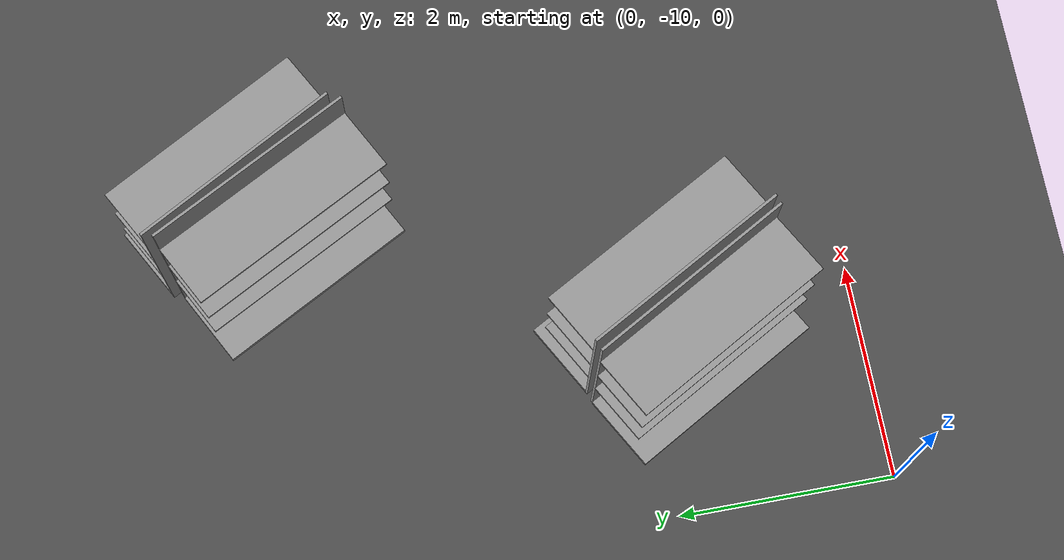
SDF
<sdf version="1.6">
 <world name="default">
  <model name="ground_plane">
   <static>1</static>
   <link name="link">
    <collision name="collision">
     <geometry><plane><normal>0 0 1</normal><size>100 100</size></plane></geometry>
     <surface>
      <contact><collide_bitmask>65535</collide_bitmask></contact>
      <friction><ode><mu>100</mu><mu2>50</mu2></ode></friction>
     </surface>
    </collision>
    <visual name="visual">
     <cast_shadows>0</cast_shadows>
     <geometry><plane><normal>0 0 1</normal><size>100 100</size></plane></geometry>
     <material>
      <script><uri>file://media/materials/scripts/gazebo.material</uri><name>Gazebo/Grey</name></script>
     </material>
    </visual>
   </link>
  </model>
  <model name="asphalt_plane">
   <static>1</static>
   <link name="link">
    <collision name="collision"><geometry><box><size>20 23.3157 0.1</size></box></geometry></collision>
    <visual name="visual">
     <cast_shadows>0</cast_shadows>
     <geometry><box><size>20 23.3157 0.1</size></box></geometry>
     <material>
      <script>
       <uri>model://asphalt_plane/materials/scripts</uri>
       <uri>model://asphalt_plane/materials/textures</uri>
       <name>vrc/asphalt</name>
      </script>
     </material>
    </visual>
   </link>
   <pose>0.082168 -0.989597 0 0 -0 0</pose>
  </model>
  <model name="LongShelf_1">
   <link name="link_0">
    <inertial>
     <mass>0.38468</mass>
     <inertia>
      <ixx>0.0321196</ixx>
      <ixy>0</ixy>
      <ixz>0</ixz>
      <iyy>2.41752</iyy>
      <iyz>0</iyz>
      <izz>2.44951</izz>
     </inertia>
    </inertial>
    <pose>0.01298 0.384233 -0.994649 0 -0 0</pose>
    <visual name="visual">
     <geometry><box><size>2 0.75 0.05</size></box></geometry>
     <material>
      <lighting>1</lighting>
      <script><uri>file://media/materials/scripts/gazebo.material</uri><name>Gazebo/Grey</name></script>
      <shader type="vertex"><normal_map>__default__</normal_map></shader>
      <ambient>0.3 0.3 0.3 1</ambient>
      <diffuse>0.7 0.7 0.7 1</diffuse>
      <specular>0.01 0.01 0.01 1</specular>
      <emissive>0 0 0 1</emissive>
     </material>
    </visual>
    <collision name="collision">
     <geometry><box><size>2 0.75 0.05</size></box></geometry>
     <surface>
      <friction>
       <ode><mu>1</mu><mu2>1</mu2><fdir1>0 0 0</fdir1><slip1>0</slip1><slip2>0</slip2></ode>
       <torsional>
        <coefficient>1</coefficient>
        <patch_radius>0</patch_radius>
        <surface_radius>0</surface_radius>
        <use_patch_radius>1</use_patch_radius>
        <ode><slip>0</slip></ode>
       </torsional>
      </friction>
      <bounce><restitution_coefficient>0</restitution_coefficient><threshold>1e+06</threshold></bounce>
      <contact>
       <collide_without_contact>0</collide_without_contact>
       <collide_without_contact_bitmask>1</collide_without_contact_bitmask>
       <collide_bitmask>1</collide_bitmask>
       <ode>
        <soft_cfm>0</soft_cfm>
        <soft_erp>0.2</soft_erp>
        <kp>1e+13</kp>
        <kd>1</kd>
        <max_vel>0.01</max_vel>
        <min_depth>0</min_depth>
       </ode>
       <bullet>
        <split_impulse>1</split_impulse>
        <split_impulse_penetration_threshold>-0.01</split_impulse_penetration_threshold>
        <soft_cfm>0</soft_cfm>
        <soft_erp>0.2</soft_erp>
        <kp>1e+13</kp>
        <kd>1</kd>
       </bullet>
      </contact>
     </surface>
    </collision>
   </link>
   <link name="link_1">
    <inertial>
     <mass>0.748605</mass>
     <inertia><ixx>0.445095</ixx><ixy>0</ixy><ixz>0</ixz><iyy>5.12268</iyy><iyz>0</iyz><izz>4.67771</izz></inertia>
    </inertial>
    <pose>0.009966 -0.000866 0 0 -0 0</pose>
    <visual name="visual">
     <geometry><box><size>2 0.025 2</size></box></geometry>
     <material>
      <lighting>1</lighting>
      <script><uri>file://media/materials/scripts/gazebo.material</uri><name>Gazebo/Grey</name></script>
      <shader type="vertex"><normal_map>__default__</normal_map></shader>
      <ambient>0.3 0.3 0.3 1</ambient>
      <diffuse>0.7 0.7 0.7 1</diffuse>
      <specular>0.01 0.01 0.01 1</specular>
      <emissive>0 0 0 1</emissive>
     </material>
    </visual>
    <collision name="collision">
     <geometry><box><size>2 0.025 2</size></box></geometry>
     <surface>
      <friction>
       <ode><mu>1</mu><mu2>1</mu2><fdir1>0 0 0</fdir1><slip1>0</slip1><slip2>0</slip2></ode>
       <torsional>
        <coefficient>1</coefficient>
        <patch_radius>0</patch_radius>
        <surface_radius>0</surface_radius>
        <use_patch_radius>1</use_patch_radius>
        <ode><slip>0</slip></ode>
       </torsional>
      </friction>
      <bounce><restitution_coefficient>0</restitution_coefficient><threshold>1e+06</threshold></bounce>
      <contact>
       <collide_without_contact>0</collide_without_contact>
       <collide_without_contact_bitmask>1</collide_without_contact_bitmask>
       <collide_bitmask>1</collide_bitmask>
       <ode>
        <soft_cfm>0</soft_cfm>
        <soft_erp>0.2</soft_erp>
        <kp>1e+13</kp>
        <kd>1</kd>
        <max_vel>0.01</max_vel>
        <min_depth>0</min_depth>
       </ode>
       <bullet>
        <split_impulse>1</split_impulse>
        <split_impulse_penetration_threshold>-0.01</split_impulse_penetration_threshold>
        <soft_cfm>0</soft_cfm>
        <soft_erp>0.2</soft_erp>
        <kp>1e+13</kp>
        <kd>1</kd>
       </bullet>
      </contact>
     </surface>
    </collision>
   </link>
   <link name="link_2">
    <inertial>
     <mass>0.0597214</mass>
     <inertia>
      <ixx>0.00742007</ixx>
      <ixy>0</ixy>
      <ixz>0</ixz>
      <iyy>0.00498871</iyy>
      <iyz>0</iyz>
      <izz>0.0123849</izz>
     </inertia>
    </inertial>
    <pose>0.010881 0.305507 0.086252 0 -0 0</pose>
    <visual name="visual">
     <geometry><box><size>2 0.6 0.025</size></box></geometry>
     <material>
      <lighting>1</lighting>
      <script><uri>file://media/materials/scripts/gazebo.material</uri><name>Gazebo/Grey</name></script>
      <shader type="vertex"><normal_map>__default__</normal_map></shader>
      <ambient>0.3 0.3 0.3 1</ambient>
      <diffuse>0.7 0.7 0.7 1</diffuse>
      <specular>0.01 0.01 0.01 1</specular>
      <emissive>0 0 0 1</emissive>
     </material>
    </visual>
    <collision name="collision">
     <geometry><box><size>2 0.600001 0.025</size></box></geometry>
     <surface>
      <friction>
       <ode><mu>1</mu><mu2>1</mu2><fdir1>0 0 0</fdir1><slip1>0</slip1><slip2>0</slip2></ode>
       <torsional>
        <coefficient>1</coefficient>
        <patch_radius>0</patch_radius>
        <surface_radius>0</surface_radius>
        <use_patch_radius>1</use_patch_radius>
        <ode><slip>0</slip></ode>
       </torsional>
      </friction>
      <bounce><restitution_coefficient>0</restitution_coefficient><threshold>1e+06</threshold></bounce>
      <contact>
       <collide_without_contact>0</collide_without_contact>
       <collide_without_contact_bitmask>1</collide_without_contact_bitmask>
       <collide_bitmask>1</collide_bitmask>
       <ode>
        <soft_cfm>0</soft_cfm>
        <soft_erp>0.2</soft_erp>
        <kp>1e+13</kp>
        <kd>1</kd>
        <max_vel>0.01</max_vel>
        <min_depth>0</min_depth>
       </ode>
       <bullet>
        <split_impulse>1</split_impulse>
        <split_impulse_penetration_threshold>-0.01</split_impulse_penetration_threshold>
        <soft_cfm>0</soft_cfm>
        <soft_erp>0.2</soft_erp>
        <kp>1e+13</kp>
        <kd>1</kd>
       </bullet>
      </contact>
     </surface>
    </collision>
   </link>
   <link name="link_2_clone">
    <inertial>
     <mass>0.0597214</mass>
     <inertia>
      <ixx>0.00742007</ixx>
      <ixy>0</ixy>
      <ixz>0</ixz>
      <iyy>0.00498871</iyy>
      <iyz>0</iyz>
      <izz>0.0123849</izz>
     </inertia>
    </inertial>
    <pose>0.012798 0.30891 0.609885 0 -0 0</pose>
    <visual name="visual">
     <geometry><box><size>2 0.6 0.025</size></box></geometry>
     <material>
      <lighting>1</lighting>
      <script><uri>file://media/materials/scripts/gazebo.material</uri><name>Gazebo/Grey</name></script>
      <shader type="vertex"><normal_map>__default__</normal_map></shader>
      <ambient>0.3 0.3 0.3 1</ambient>
      <diffuse>0.7 0.7 0.7 1</diffuse>
      <specular>0.01 0.01 0.01 1</specular>
      <emissive>0 0 0 1</emissive>
     </material>
    </visual>
    <collision name="collision">
     <geometry><box><size>2 0.600001 0.025</size></box></geometry>
     <surface>
      <friction>
       <ode><mu>1</mu><mu2>1</mu2><fdir1>0 0 0</fdir1><slip1>0</slip1><slip2>0</slip2></ode>
       <torsional>
        <coefficient>1</coefficient>
        <patch_radius>0</patch_radius>
        <surface_radius>0</surface_radius>
        <use_patch_radius>1</use_patch_radius>
        <ode><slip>0</slip></ode>
       </torsional>
      </friction>
      <bounce><restitution_coefficient>0</restitution_coefficient><threshold>1e+06</threshold></bounce>
      <contact>
       <collide_without_contact>0</collide_without_contact>
       <collide_without_contact_bitmask>1</collide_without_contact_bitmask>
       <collide_bitmask>1</collide_bitmask>
       <ode>
        <soft_cfm>0</soft_cfm>
        <soft_erp>0.2</soft_erp>
        <kp>1e+13</kp>
        <kd>1</kd>
        <max_vel>0.01</max_vel>
        <min_depth>0</min_depth>
       </ode>
       <bullet>
        <split_impulse>1</split_impulse>
        <split_impulse_penetration_threshold>-0.01</split_impulse_penetration_threshold>
        <soft_cfm>0</soft_cfm>
        <soft_erp>0.2</soft_erp>
        <kp>1e+13</kp>
        <kd>1</kd>
       </bullet>
      </contact>
     </surface>
    </collision>
   </link>
   <link name="link_2_clone_0">
    <inertial>
     <mass>0.0597214</mass>
     <inertia>
      <ixx>0.00742007</ixx>
      <ixy>0</ixy>
      <ixz>0</ixz>
      <iyy>0.00498871</iyy>
      <iyz>0</iyz>
      <izz>0.0123849</izz>
     </inertia>
    </inertial>
    <pose>0.012613 0.308582 -0.399561 0 -0 0</pose>
    <visual name="visual">
     <geometry><box><size>2 0.6 0.025</size></box></geometry>
     <material>
      <lighting>1</lighting>
      <script><uri>file://media/materials/scripts/gazebo.material</uri><name>Gazebo/Grey</name></script>
      <shader type="vertex"><normal_map>__default__</normal_map></shader>
      <ambient>0.3 0.3 0.3 1</ambient>
      <diffuse>0.7 0.7 0.7 1</diffuse>
      <specular>0.01 0.01 0.01 1</specular>
      <emissive>0 0 0 1</emissive>
     </material>
    </visual>
    <collision name="collision">
     <geometry><box><size>2 0.600001 0.025</size></box></geometry>
     <surface>
      <friction>
       <ode><mu>1</mu><mu2>1</mu2><fdir1>0 0 0</fdir1><slip1>0</slip1><slip2>0</slip2></ode>
       <torsional>
        <coefficient>1</coefficient>
        <patch_radius>0</patch_radius>
        <surface_radius>0</surface_radius>
        <use_patch_radius>1</use_patch_radius>
        <ode><slip>0</slip></ode>
       </torsional>
      </friction>
      <bounce><restitution_coefficient>0</restitution_coefficient><threshold>1e+06</threshold></bounce>
      <contact>
       <collide_without_contact>0</collide_without_contact>
       <collide_without_contact_bitmask>1</collide_without_contact_bitmask>
       <collide_bitmask>1</collide_bitmask>
       <ode>
        <soft_cfm>0</soft_cfm>
        <soft_erp>0.2</soft_erp>
        <kp>1e+13</kp>
        <kd>1</kd>
        <max_vel>0.01</max_vel>
        <min_depth>0</min_depth>
       </ode>
       <bullet>
        <split_impulse>1</split_impulse>
        <split_impulse_penetration_threshold>-0.01</split_impulse_penetration_threshold>
        <soft_cfm>0</soft_cfm>
        <soft_erp>0.2</soft_erp>
        <kp>1e+13</kp>
        <kd>1</kd>
       </bullet>
      </contact>
     </surface>
    </collision>
   </link>
   <joint name="link_1_JOINT_0" type="fixed">
    <parent>link_1</parent>
    <child>link_0</child>
    <physics>
     <ode><limit><cfm>0</cfm><erp>0.2</erp></limit><suspension><cfm>0</cfm><erp>0.2</erp></suspension></ode>
    </physics>
   </joint>
   <joint name="link_1_JOINT_1" type="fixed">
    <parent>link_1</parent>
    <child>link_2_clone_0</child>
    <physics>
     <ode><limit><cfm>0</cfm><erp>0.2</erp></limit><suspension><cfm>0</cfm><erp>0.2</erp></suspension></ode>
    </physics>
   </joint>
   <joint name="link_1_JOINT_2" type="revolute">
    <parent>link_1</parent>
    <child>link_2</child>
    <axis>
     <xyz>1 0 0</xyz>
     <use_parent_model_frame>0</use_parent_model_frame>
     <limit>
      <lower>-1.79769e+308</lower>
      <upper>1.79769e+308</upper>
      <effort>-1</effort>
      <velocity>-1</velocity>
     </limit>
     <dynamics>
      <spring_reference>0</spring_reference>
      <spring_stiffness>0</spring_stiffness>
      <damping>0</damping>
      <friction>0</friction>
     </dynamics>
    </axis>
    <physics>
     <ode><limit><cfm>0</cfm><erp>0.2</erp></limit><suspension><cfm>0</cfm><erp>0.2</erp></suspension></ode>
    </physics>
   </joint>
   <joint name="link_1_JOINT_3" type="fixed">
    <parent>link_1</parent>
    <child>link_2_clone</child>
    <physics>
     <ode><limit><cfm>0</cfm><erp>0.2</erp></limit><suspension><cfm>0</cfm><erp>0.2</erp></suspension></ode>
    </physics>
   </joint>
   <static>0</static>
   <pose>3.31025 -4.78828 1.06965 2e-06 1e-06 2.05695</pose>
  </model>
  <model name="LongShelf_1_clone">
   <link name="link_0">
    <inertial>
     <mass>0.38468</mass>
     <inertia>
      <ixx>0.0321196</ixx>
      <ixy>0</ixy>
      <ixz>0</ixz>
      <iyy>2.41752</iyy>
      <iyz>0</iyz>
      <izz>2.44951</izz>
     </inertia>
    </inertial>
    <pose>0.01298 0.384233 -0.994649 0 -0 0</pose>
    <visual name="visual">
     <geometry><box><size>2 0.75 0.05</size></box></geometry>
     <material>
      <lighting>1</lighting>
      <script><uri>file://media/materials/scripts/gazebo.material</uri><name>Gazebo/Grey</name></script>
      <shader type="vertex"><normal_map>__default__</normal_map></shader>
      <ambient>0.3 0.3 0.3 1</ambient>
      <diffuse>0.7 0.7 0.7 1</diffuse>
      <specular>0.01 0.01 0.01 1</specular>
      <emissive>0 0 0 1</emissive>
     </material>
    </visual>
    <collision name="collision">
     <geometry><box><size>2 0.75 0.05</size></box></geometry>
     <surface>
      <friction>
       <ode><mu>1</mu><mu2>1</mu2><fdir1>0 0 0</fdir1><slip1>0</slip1><slip2>0</slip2></ode>
       <torsional>
        <coefficient>1</coefficient>
        <patch_radius>0</patch_radius>
        <surface_radius>0</surface_radius>
        <use_patch_radius>1</use_patch_radius>
        <ode><slip>0</slip></ode>
       </torsional>
      </friction>
      <bounce><restitution_coefficient>0</restitution_coefficient><threshold>1e+06</threshold></bounce>
      <contact>
       <collide_without_contact>0</collide_without_contact>
       <collide_without_contact_bitmask>1</collide_without_contact_bitmask>
       <collide_bitmask>1</collide_bitmask>
       <ode>
        <soft_cfm>0</soft_cfm>
        <soft_erp>0.2</soft_erp>
        <kp>1e+13</kp>
        <kd>1</kd>
        <max_vel>0.01</max_vel>
        <min_depth>0</min_depth>
       </ode>
       <bullet>
        <split_impulse>1</split_impulse>
        <split_impulse_penetration_threshold>-0.01</split_impulse_penetration_threshold>
        <soft_cfm>0</soft_cfm>
        <soft_erp>0.2</soft_erp>
        <kp>1e+13</kp>
        <kd>1</kd>
       </bullet>
      </contact>
     </surface>
    </collision>
   </link>
   <link name="link_1">
    <inertial>
     <mass>0.748605</mass>
     <inertia><ixx>0.445095</ixx><ixy>0</ixy><ixz>0</ixz><iyy>5.12268</iyy><iyz>0</iyz><izz>4.67771</izz></inertia>
    </inertial>
    <pose>0.009966 -0.000866 0 0 -0 0</pose>
    <visual name="visual">
     <geometry><box><size>2 0.025 2</size></box></geometry>
     <material>
      <lighting>1</lighting>
      <script><uri>file://media/materials/scripts/gazebo.material</uri><name>Gazebo/Grey</name></script>
      <shader type="vertex"><normal_map>__default__</normal_map></shader>
      <ambient>0.3 0.3 0.3 1</ambient>
      <diffuse>0.7 0.7 0.7 1</diffuse>
      <specular>0.01 0.01 0.01 1</specular>
      <emissive>0 0 0 1</emissive>
     </material>
    </visual>
    <collision name="collision">
     <geometry><box><size>2 0.025 2</size></box></geometry>
     <surface>
      <friction>
       <ode><mu>1</mu><mu2>1</mu2><fdir1>0 0 0</fdir1><slip1>0</slip1><slip2>0</slip2></ode>
       <torsional>
        <coefficient>1</coefficient>
        <patch_radius>0</patch_radius>
        <surface_radius>0</surface_radius>
        <use_patch_radius>1</use_patch_radius>
        <ode><slip>0</slip></ode>
       </torsional>
      </friction>
      <bounce><restitution_coefficient>0</restitution_coefficient><threshold>1e+06</threshold></bounce>
      <contact>
       <collide_without_contact>0</collide_without_contact>
       <collide_without_contact_bitmask>1</collide_without_contact_bitmask>
       <collide_bitmask>1</collide_bitmask>
       <ode>
        <soft_cfm>0</soft_cfm>
        <soft_erp>0.2</soft_erp>
        <kp>1e+13</kp>
        <kd>1</kd>
        <max_vel>0.01</max_vel>
        <min_depth>0</min_depth>
       </ode>
       <bullet>
        <split_impulse>1</split_impulse>
        <split_impulse_penetration_threshold>-0.01</split_impulse_penetration_threshold>
        <soft_cfm>0</soft_cfm>
        <soft_erp>0.2</soft_erp>
        <kp>1e+13</kp>
        <kd>1</kd>
       </bullet>
      </contact>
     </surface>
    </collision>
   </link>
   <link name="link_2">
    <inertial>
     <mass>0.0597214</mass>
     <inertia>
      <ixx>0.00742007</ixx>
      <ixy>0</ixy>
      <ixz>0</ixz>
      <iyy>0.00498871</iyy>
      <iyz>0</iyz>
      <izz>0.0123849</izz>
     </inertia>
    </inertial>
    <pose>0.010881 0.305507 0.086252 0 -0 0</pose>
    <visual name="visual">
     <geometry><box><size>2 0.6 0.025</size></box></geometry>
     <material>
      <lighting>1</lighting>
      <script><uri>file://media/materials/scripts/gazebo.material</uri><name>Gazebo/Grey</name></script>
      <shader type="vertex"><normal_map>__default__</normal_map></shader>
      <ambient>0.3 0.3 0.3 1</ambient>
      <diffuse>0.7 0.7 0.7 1</diffuse>
      <specular>0.01 0.01 0.01 1</specular>
      <emissive>0 0 0 1</emissive>
     </material>
    </visual>
    <collision name="collision">
     <geometry><box><size>2 0.600001 0.025</size></box></geometry>
     <surface>
      <friction>
       <ode><mu>1</mu><mu2>1</mu2><fdir1>0 0 0</fdir1><slip1>0</slip1><slip2>0</slip2></ode>
       <torsional>
        <coefficient>1</coefficient>
        <patch_radius>0</patch_radius>
        <surface_radius>0</surface_radius>
        <use_patch_radius>1</use_patch_radius>
        <ode><slip>0</slip></ode>
       </torsional>
      </friction>
      <bounce><restitution_coefficient>0</restitution_coefficient><threshold>1e+06</threshold></bounce>
      <contact>
       <collide_without_contact>0</collide_without_contact>
       <collide_without_contact_bitmask>1</collide_without_contact_bitmask>
       <collide_bitmask>1</collide_bitmask>
       <ode>
        <soft_cfm>0</soft_cfm>
        <soft_erp>0.2</soft_erp>
        <kp>1e+13</kp>
        <kd>1</kd>
        <max_vel>0.01</max_vel>
        <min_depth>0</min_depth>
       </ode>
       <bullet>
        <split_impulse>1</split_impulse>
        <split_impulse_penetration_threshold>-0.01</split_impulse_penetration_threshold>
        <soft_cfm>0</soft_cfm>
        <soft_erp>0.2</soft_erp>
        <kp>1e+13</kp>
        <kd>1</kd>
       </bullet>
      </contact>
     </surface>
    </collision>
   </link>
   <link name="link_2_clone">
    <inertial>
     <mass>0.0597214</mass>
     <inertia>
      <ixx>0.00742007</ixx>
      <ixy>0</ixy>
      <ixz>0</ixz>
      <iyy>0.00498871</iyy>
      <iyz>0</iyz>
      <izz>0.0123849</izz>
     </inertia>
    </inertial>
    <pose>0.012798 0.30891 0.609885 0 -0 0</pose>
    <visual name="visual">
     <geometry><box><size>2 0.6 0.025</size></box></geometry>
     <material>
      <lighting>1</lighting>
      <script><uri>file://media/materials/scripts/gazebo.material</uri><name>Gazebo/Grey</name></script>
      <shader type="vertex"><normal_map>__default__</normal_map></shader>
      <ambient>0.3 0.3 0.3 1</ambient>
      <diffuse>0.7 0.7 0.7 1</diffuse>
      <specular>0.01 0.01 0.01 1</specular>
      <emissive>0 0 0 1</emissive>
     </material>
    </visual>
    <collision name="collision">
     <geometry><box><size>2 0.600001 0.025</size></box></geometry>
     <surface>
      <friction>
       <ode><mu>1</mu><mu2>1</mu2><fdir1>0 0 0</fdir1><slip1>0</slip1><slip2>0</slip2></ode>
       <torsional>
        <coefficient>1</coefficient>
        <patch_radius>0</patch_radius>
        <surface_radius>0</surface_radius>
        <use_patch_radius>1</use_patch_radius>
        <ode><slip>0</slip></ode>
       </torsional>
      </friction>
      <bounce><restitution_coefficient>0</restitution_coefficient><threshold>1e+06</threshold></bounce>
      <contact>
       <collide_without_contact>0</collide_without_contact>
       <collide_without_contact_bitmask>1</collide_without_contact_bitmask>
       <collide_bitmask>1</collide_bitmask>
       <ode>
        <soft_cfm>0</soft_cfm>
        <soft_erp>0.2</soft_erp>
        <kp>1e+13</kp>
        <kd>1</kd>
        <max_vel>0.01</max_vel>
        <min_depth>0</min_depth>
       </ode>
       <bullet>
        <split_impulse>1</split_impulse>
        <split_impulse_penetration_threshold>-0.01</split_impulse_penetration_threshold>
        <soft_cfm>0</soft_cfm>
        <soft_erp>0.2</soft_erp>
        <kp>1e+13</kp>
        <kd>1</kd>
       </bullet>
      </contact>
     </surface>
    </collision>
   </link>
   <link name="link_2_clone_0">
    <inertial>
     <mass>0.0597214</mass>
     <inertia>
      <ixx>0.00742007</ixx>
      <ixy>0</ixy>
      <ixz>0</ixz>
      <iyy>0.00498871</iyy>
      <iyz>0</iyz>
      <izz>0.0123849</izz>
     </inertia>
    </inertial>
    <pose>0.012613 0.308582 -0.399561 0 -0 0</pose>
    <visual name="visual">
     <geometry><box><size>2 0.6 0.025</size></box></geometry>
     <material>
      <lighting>1</lighting>
      <script><uri>file://media/materials/scripts/gazebo.material</uri><name>Gazebo/Grey</name></script>
      <shader type="vertex"><normal_map>__default__</normal_map></shader>
      <ambient>0.3 0.3 0.3 1</ambient>
      <diffuse>0.7 0.7 0.7 1</diffuse>
      <specular>0.01 0.01 0.01 1</specular>
      <emissive>0 0 0 1</emissive>
     </material>
    </visual>
    <collision name="collision">
     <geometry><box><size>2 0.600001 0.025</size></box></geometry>
     <surface>
      <friction>
       <ode><mu>1</mu><mu2>1</mu2><fdir1>0 0 0</fdir1><slip1>0</slip1><slip2>0</slip2></ode>
       <torsional>
        <coefficient>1</coefficient>
        <patch_radius>0</patch_radius>
        <surface_radius>0</surface_radius>
        <use_patch_radius>1</use_patch_radius>
        <ode><slip>0</slip></ode>
       </torsional>
      </friction>
      <bounce><restitution_coefficient>0</restitution_coefficient><threshold>1e+06</threshold></bounce>
      <contact>
       <collide_without_contact>0</collide_without_contact>
       <collide_without_contact_bitmask>1</collide_without_contact_bitmask>
       <collide_bitmask>1</collide_bitmask>
       <ode>
        <soft_cfm>0</soft_cfm>
        <soft_erp>0.2</soft_erp>
        <kp>1e+13</kp>
        <kd>1</kd>
        <max_vel>0.01</max_vel>
        <min_depth>0</min_depth>
       </ode>
       <bullet>
        <split_impulse>1</split_impulse>
        <split_impulse_penetration_threshold>-0.01</split_impulse_penetration_threshold>
        <soft_cfm>0</soft_cfm>
        <soft_erp>0.2</soft_erp>
        <kp>1e+13</kp>
        <kd>1</kd>
       </bullet>
      </contact>
     </surface>
    </collision>
   </link>
   <joint name="link_1_JOINT_0" type="fixed">
    <parent>link_1</parent>
    <child>link_0</child>
    <physics>
     <ode><limit><cfm>0</cfm><erp>0.2</erp></limit><suspension><cfm>0</cfm><erp>0.2</erp></suspension></ode>
    </physics>
   </joint>
   <joint name="link_1_JOINT_1" type="fixed">
    <parent>link_1</parent>
    <child>link_2_clone_0</child>
    <physics>
     <ode><limit><cfm>0</cfm><erp>0.2</erp></limit><suspension><cfm>0</cfm><erp>0.2</erp></suspension></ode>
    </physics>
   </joint>
   <joint name="link_1_JOINT_2" type="revolute">
    <parent>link_1</parent>
    <child>link_2</child>
    <axis>
     <xyz>1 0 0</xyz>
     <use_parent_model_frame>0</use_parent_model_frame>
     <limit>
      <lower>-1.79769e+308</lower>
      <upper>1.79769e+308</upper>
      <effort>-1</effort>
      <velocity>-1</velocity>
     </limit>
     <dynamics>
      <spring_reference>0</spring_reference>
      <spring_stiffness>0</spring_stiffness>
      <damping>0</damping>
      <friction>0</friction>
     </dynamics>
    </axis>
    <physics>
     <ode><limit><cfm>0</cfm><erp>0.2</erp></limit><suspension><cfm>0</cfm><erp>0.2</erp></suspension></ode>
    </physics>
   </joint>
   <joint name="link_1_JOINT_3" type="fixed">
    <parent>link_1</parent>
    <child>link_2_clone</child>
    <physics>
     <ode><limit><cfm>0</cfm><erp>0.2</erp></limit><suspension><cfm>0</cfm><erp>0.2</erp></suspension></ode>
    </physics>
   </joint>
   <static>0</static>
   <pose>3.34597 -4.6627 1.06965 1e-06 -0 -1.06783</pose>
  </model>
  <model name="LongShelf_1_clone_0">
   <link name="link_0">
    <inertial>
     <mass>0.38468</mass>
     <inertia>
      <ixx>0.0321196</ixx>
      <ixy>0</ixy>
      <ixz>0</ixz>
      <iyy>2.41752</iyy>
      <iyz>0</iyz>
      <izz>2.44951</izz>
     </inertia>
    </inertial>
    <pose>0.01298 0.384233 -0.994649 0 -0 0</pose>
    <visual name="visual">
     <geometry><box><size>2 0.75 0.05</size></box></geometry>
     <material>
      <lighting>1</lighting>
      <script><uri>file://media/materials/scripts/gazebo.material</uri><name>Gazebo/Grey</name></script>
      <shader type="vertex"><normal_map>__default__</normal_map></shader>
      <ambient>0.3 0.3 0.3 1</ambient>
      <diffuse>0.7 0.7 0.7 1</diffuse>
      <specular>0.01 0.01 0.01 1</specular>
      <emissive>0 0 0 1</emissive>
     </material>
    </visual>
    <collision name="collision">
     <geometry><box><size>2 0.75 0.05</size></box></geometry>
     <surface>
      <friction>
       <ode><mu>1</mu><mu2>1</mu2><fdir1>0 0 0</fdir1><slip1>0</slip1><slip2>0</slip2></ode>
       <torsional>
        <coefficient>1</coefficient>
        <patch_radius>0</patch_radius>
        <surface_radius>0</surface_radius>
        <use_patch_radius>1</use_patch_radius>
        <ode><slip>0</slip></ode>
       </torsional>
      </friction>
      <bounce><restitution_coefficient>0</restitution_coefficient><threshold>1e+06</threshold></bounce>
      <contact>
       <collide_without_contact>0</collide_without_contact>
       <collide_without_contact_bitmask>1</collide_without_contact_bitmask>
       <collide_bitmask>1</collide_bitmask>
       <ode>
        <soft_cfm>0</soft_cfm>
        <soft_erp>0.2</soft_erp>
        <kp>1e+13</kp>
        <kd>1</kd>
        <max_vel>0.01</max_vel>
        <min_depth>0</min_depth>
       </ode>
       <bullet>
        <split_impulse>1</split_impulse>
        <split_impulse_penetration_threshold>-0.01</split_impulse_penetration_threshold>
        <soft_cfm>0</soft_cfm>
        <soft_erp>0.2</soft_erp>
        <kp>1e+13</kp>
        <kd>1</kd>
       </bullet>
      </contact>
     </surface>
    </collision>
   </link>
   <link name="link_1">
    <inertial>
     <mass>0.748605</mass>
     <inertia><ixx>0.445095</ixx><ixy>0</ixy><ixz>0</ixz><iyy>5.12268</iyy><iyz>0</iyz><izz>4.67771</izz></inertia>
    </inertial>
    <pose>0.009966 -0.000866 0 0 -0 0</pose>
    <visual name="visual">
     <geometry><box><size>2 0.025 2</size></box></geometry>
     <material>
      <lighting>1</lighting>
      <script><uri>file://media/materials/scripts/gazebo.material</uri><name>Gazebo/Grey</name></script>
      <shader type="vertex"><normal_map>__default__</normal_map></shader>
      <ambient>0.3 0.3 0.3 1</ambient>
      <diffuse>0.7 0.7 0.7 1</diffuse>
      <specular>0.01 0.01 0.01 1</specular>
      <emissive>0 0 0 1</emissive>
     </material>
    </visual>
    <collision name="collision">
     <geometry><box><size>2 0.025 2</size></box></geometry>
     <surface>
      <friction>
       <ode><mu>1</mu><mu2>1</mu2><fdir1>0 0 0</fdir1><slip1>0</slip1><slip2>0</slip2></ode>
       <torsional>
        <coefficient>1</coefficient>
        <patch_radius>0</patch_radius>
        <surface_radius>0</surface_radius>
        <use_patch_radius>1</use_patch_radius>
        <ode><slip>0</slip></ode>
       </torsional>
      </friction>
      <bounce><restitution_coefficient>0</restitution_coefficient><threshold>1e+06</threshold></bounce>
      <contact>
       <collide_without_contact>0</collide_without_contact>
       <collide_without_contact_bitmask>1</collide_without_contact_bitmask>
       <collide_bitmask>1</collide_bitmask>
       <ode>
        <soft_cfm>0</soft_cfm>
        <soft_erp>0.2</soft_erp>
        <kp>1e+13</kp>
        <kd>1</kd>
        <max_vel>0.01</max_vel>
        <min_depth>0</min_depth>
       </ode>
       <bullet>
        <split_impulse>1</split_impulse>
        <split_impulse_penetration_threshold>-0.01</split_impulse_penetration_threshold>
        <soft_cfm>0</soft_cfm>
        <soft_erp>0.2</soft_erp>
        <kp>1e+13</kp>
        <kd>1</kd>
       </bullet>
      </contact>
     </surface>
    </collision>
   </link>
   <link name="link_2">
    <inertial>
     <mass>0.0597214</mass>
     <inertia>
      <ixx>0.00742007</ixx>
      <ixy>0</ixy>
      <ixz>0</ixz>
      <iyy>0.00498871</iyy>
      <iyz>0</iyz>
      <izz>0.0123849</izz>
     </inertia>
    </inertial>
    <pose>0.010881 0.305507 0.086252 0 -0 0</pose>
    <visual name="visual">
     <geometry><box><size>2 0.6 0.025</size></box></geometry>
     <material>
      <lighting>1</lighting>
      <script><uri>file://media/materials/scripts/gazebo.material</uri><name>Gazebo/Grey</name></script>
      <shader type="vertex"><normal_map>__default__</normal_map></shader>
      <ambient>0.3 0.3 0.3 1</ambient>
      <diffuse>0.7 0.7 0.7 1</diffuse>
      <specular>0.01 0.01 0.01 1</specular>
      <emissive>0 0 0 1</emissive>
     </material>
    </visual>
    <collision name="collision">
     <geometry><box><size>2 0.600001 0.025</size></box></geometry>
     <surface>
      <friction>
       <ode><mu>1</mu><mu2>1</mu2><fdir1>0 0 0</fdir1><slip1>0</slip1><slip2>0</slip2></ode>
       <torsional>
        <coefficient>1</coefficient>
        <patch_radius>0</patch_radius>
        <surface_radius>0</surface_radius>
        <use_patch_radius>1</use_patch_radius>
        <ode><slip>0</slip></ode>
       </torsional>
      </friction>
      <bounce><restitution_coefficient>0</restitution_coefficient><threshold>1e+06</threshold></bounce>
      <contact>
       <collide_without_contact>0</collide_without_contact>
       <collide_without_contact_bitmask>1</collide_without_contact_bitmask>
       <collide_bitmask>1</collide_bitmask>
       <ode>
        <soft_cfm>0</soft_cfm>
        <soft_erp>0.2</soft_erp>
        <kp>1e+13</kp>
        <kd>1</kd>
        <max_vel>0.01</max_vel>
        <min_depth>0</min_depth>
       </ode>
       <bullet>
        <split_impulse>1</split_impulse>
        <split_impulse_penetration_threshold>-0.01</split_impulse_penetration_threshold>
        <soft_cfm>0</soft_cfm>
        <soft_erp>0.2</soft_erp>
        <kp>1e+13</kp>
        <kd>1</kd>
       </bullet>
      </contact>
     </surface>
    </collision>
   </link>
   <link name="link_2_clone">
    <inertial>
     <mass>0.0597214</mass>
     <inertia>
      <ixx>0.00742007</ixx>
      <ixy>0</ixy>
      <ixz>0</ixz>
      <iyy>0.00498871</iyy>
      <iyz>0</iyz>
      <izz>0.0123849</izz>
     </inertia>
    </inertial>
    <pose>0.012798 0.30891 0.609885 0 -0 0</pose>
    <visual name="visual">
     <geometry><box><size>2 0.6 0.025</size></box></geometry>
     <material>
      <lighting>1</lighting>
      <script><uri>file://media/materials/scripts/gazebo.material</uri><name>Gazebo/Grey</name></script>
      <shader type="vertex"><normal_map>__default__</normal_map></shader>
      <ambient>0.3 0.3 0.3 1</ambient>
      <diffuse>0.7 0.7 0.7 1</diffuse>
      <specular>0.01 0.01 0.01 1</specular>
      <emissive>0 0 0 1</emissive>
     </material>
    </visual>
    <collision name="collision">
     <geometry><box><size>2 0.600001 0.025</size></box></geometry>
     <surface>
      <friction>
       <ode><mu>1</mu><mu2>1</mu2><fdir1>0 0 0</fdir1><slip1>0</slip1><slip2>0</slip2></ode>
       <torsional>
        <coefficient>1</coefficient>
        <patch_radius>0</patch_radius>
        <surface_radius>0</surface_radius>
        <use_patch_radius>1</use_patch_radius>
        <ode><slip>0</slip></ode>
       </torsional>
      </friction>
      <bounce><restitution_coefficient>0</restitution_coefficient><threshold>1e+06</threshold></bounce>
      <contact>
       <collide_without_contact>0</collide_without_contact>
       <collide_without_contact_bitmask>1</collide_without_contact_bitmask>
       <collide_bitmask>1</collide_bitmask>
       <ode>
        <soft_cfm>0</soft_cfm>
        <soft_erp>0.2</soft_erp>
        <kp>1e+13</kp>
        <kd>1</kd>
        <max_vel>0.01</max_vel>
        <min_depth>0</min_depth>
       </ode>
       <bullet>
        <split_impulse>1</split_impulse>
        <split_impulse_penetration_threshold>-0.01</split_impulse_penetration_threshold>
        <soft_cfm>0</soft_cfm>
        <soft_erp>0.2</soft_erp>
        <kp>1e+13</kp>
        <kd>1</kd>
       </bullet>
      </contact>
     </surface>
    </collision>
   </link>
   <link name="link_2_clone_0">
    <inertial>
     <mass>0.0597214</mass>
     <inertia>
      <ixx>0.00742007</ixx>
      <ixy>0</ixy>
      <ixz>0</ixz>
      <iyy>0.00498871</iyy>
      <iyz>0</iyz>
      <izz>0.0123849</izz>
     </inertia>
    </inertial>
    <pose>0.012613 0.308582 -0.399561 0 -0 0</pose>
    <visual name="visual">
     <geometry><box><size>2 0.6 0.025</size></box></geometry>
     <material>
      <lighting>1</lighting>
      <script><uri>file://media/materials/scripts/gazebo.material</uri><name>Gazebo/Grey</name></script>
      <shader type="vertex"><normal_map>__default__</normal_map></shader>
      <ambient>0.3 0.3 0.3 1</ambient>
      <diffuse>0.7 0.7 0.7 1</diffuse>
      <specular>0.01 0.01 0.01 1</specular>
      <emissive>0 0 0 1</emissive>
     </material>
    </visual>
    <collision name="collision">
     <geometry><box><size>2 0.600001 0.025</size></box></geometry>
     <surface>
      <friction>
       <ode><mu>1</mu><mu2>1</mu2><fdir1>0 0 0</fdir1><slip1>0</slip1><slip2>0</slip2></ode>
       <torsional>
        <coefficient>1</coefficient>
        <patch_radius>0</patch_radius>
        <surface_radius>0</surface_radius>
        <use_patch_radius>1</use_patch_radius>
        <ode><slip>0</slip></ode>
       </torsional>
      </friction>
      <bounce><restitution_coefficient>0</restitution_coefficient><threshold>1e+06</threshold></bounce>
      <contact>
       <collide_without_contact>0</collide_without_contact>
       <collide_without_contact_bitmask>1</collide_without_contact_bitmask>
       <collide_bitmask>1</collide_bitmask>
       <ode>
        <soft_cfm>0</soft_cfm>
        <soft_erp>0.2</soft_erp>
        <kp>1e+13</kp>
        <kd>1</kd>
        <max_vel>0.01</max_vel>
        <min_depth>0</min_depth>
       </ode>
       <bullet>
        <split_impulse>1</split_impulse>
        <split_impulse_penetration_threshold>-0.01</split_impulse_penetration_threshold>
        <soft_cfm>0</soft_cfm>
        <soft_erp>0.2</soft_erp>
        <kp>1e+13</kp>
        <kd>1</kd>
       </bullet>
      </contact>
     </surface>
    </collision>
   </link>
   <joint name="link_1_JOINT_0" type="fixed">
    <parent>link_1</parent>
    <child>link_0</child>
    <physics>
     <ode><limit><cfm>0</cfm><erp>0.2</erp></limit><suspension><cfm>0</cfm><erp>0.2</erp></suspension></ode>
    </physics>
   </joint>
   <joint name="link_1_JOINT_1" type="fixed">
    <parent>link_1</parent>
    <child>link_2_clone_0</child>
    <physics>
     <ode><limit><cfm>0</cfm><erp>0.2</erp></limit><suspension><cfm>0</cfm><erp>0.2</erp></suspension></ode>
    </physics>
   </joint>
   <joint name="link_1_JOINT_2" type="revolute">
    <parent>link_1</parent>
    <child>link_2</child>
    <axis>
     <xyz>1 0 0</xyz>
     <use_parent_model_frame>0</use_parent_model_frame>
     <limit>
      <lower>-1.79769e+308</lower>
      <upper>1.79769e+308</upper>
      <effort>-1</effort>
      <velocity>-1</velocity>
     </limit>
     <dynamics>
      <spring_reference>0</spring_reference>
      <spring_stiffness>0</spring_stiffness>
      <damping>0</damping>
      <friction>0</friction>
     </dynamics>
    </axis>
    <physics>
     <ode><limit><cfm>0</cfm><erp>0.2</erp></limit><suspension><cfm>0</cfm><erp>0.2</erp></suspension></ode>
    </physics>
   </joint>
   <joint name="link_1_JOINT_3" type="fixed">
    <parent>link_1</parent>
    <child>link_2_clone</child>
    <physics>
     <ode><limit><cfm>0</cfm><erp>0.2</erp></limit><suspension><cfm>0</cfm><erp>0.2</erp></suspension></ode>
    </physics>
   </joint>
   <static>0</static>
   <pose>1.66805 -8.29877 1.06964 1e-06 -0 2.08037</pose>
  </model>
  <model name="LongShelf_1_clone_clone">
   <link name="link_0">
    <inertial>
     <mass>0.38468</mass>
     <inertia>
      <ixx>0.0321196</ixx>
      <ixy>0</ixy>
      <ixz>0</ixz>
      <iyy>2.41752</iyy>
      <iyz>0</iyz>
      <izz>2.44951</izz>
     </inertia>
    </inertial>
    <pose>0.01298 0.384233 -0.994649 0 -0 0</pose>
    <visual name="visual">
     <geometry><box><size>2 0.75 0.05</size></box></geometry>
     <material>
      <lighting>1</lighting>
      <script><uri>file://media/materials/scripts/gazebo.material</uri><name>Gazebo/Grey</name></script>
      <shader type="vertex"><normal_map>__default__</normal_map></shader>
      <ambient>0.3 0.3 0.3 1</ambient>
      <diffuse>0.7 0.7 0.7 1</diffuse>
      <specular>0.01 0.01 0.01 1</specular>
      <emissive>0 0 0 1</emissive>
     </material>
    </visual>
    <collision name="collision">
     <geometry><box><size>2 0.75 0.05</size></box></geometry>
     <surface>
      <friction>
       <ode><mu>1</mu><mu2>1</mu2><fdir1>0 0 0</fdir1><slip1>0</slip1><slip2>0</slip2></ode>
       <torsional>
        <coefficient>1</coefficient>
        <patch_radius>0</patch_radius>
        <surface_radius>0</surface_radius>
        <use_patch_radius>1</use_patch_radius>
        <ode><slip>0</slip></ode>
       </torsional>
      </friction>
      <bounce><restitution_coefficient>0</restitution_coefficient><threshold>1e+06</threshold></bounce>
      <contact>
       <collide_without_contact>0</collide_without_contact>
       <collide_without_contact_bitmask>1</collide_without_contact_bitmask>
       <collide_bitmask>1</collide_bitmask>
       <ode>
        <soft_cfm>0</soft_cfm>
        <soft_erp>0.2</soft_erp>
        <kp>1e+13</kp>
        <kd>1</kd>
        <max_vel>0.01</max_vel>
        <min_depth>0</min_depth>
       </ode>
       <bullet>
        <split_impulse>1</split_impulse>
        <split_impulse_penetration_threshold>-0.01</split_impulse_penetration_threshold>
        <soft_cfm>0</soft_cfm>
        <soft_erp>0.2</soft_erp>
        <kp>1e+13</kp>
        <kd>1</kd>
       </bullet>
      </contact>
     </surface>
    </collision>
   </link>
   <link name="link_1">
    <inertial>
     <mass>0.748605</mass>
     <inertia><ixx>0.445095</ixx><ixy>0</ixy><ixz>0</ixz><iyy>5.12268</iyy><iyz>0</iyz><izz>4.67771</izz></inertia>
    </inertial>
    <pose>0.009966 -0.000866 0 0 -0 0</pose>
    <visual name="visual">
     <geometry><box><size>2 0.025 2</size></box></geometry>
     <material>
      <lighting>1</lighting>
      <script><uri>file://media/materials/scripts/gazebo.material</uri><name>Gazebo/Grey</name></script>
      <shader type="vertex"><normal_map>__default__</normal_map></shader>
      <ambient>0.3 0.3 0.3 1</ambient>
      <diffuse>0.7 0.7 0.7 1</diffuse>
      <specular>0.01 0.01 0.01 1</specular>
      <emissive>0 0 0 1</emissive>
     </material>
    </visual>
    <collision name="collision">
     <geometry><box><size>2 0.025 2</size></box></geometry>
     <surface>
      <friction>
       <ode><mu>1</mu><mu2>1</mu2><fdir1>0 0 0</fdir1><slip1>0</slip1><slip2>0</slip2></ode>
       <torsional>
        <coefficient>1</coefficient>
        <patch_radius>0</patch_radius>
        <surface_radius>0</surface_radius>
        <use_patch_radius>1</use_patch_radius>
        <ode><slip>0</slip></ode>
       </torsional>
      </friction>
      <bounce><restitution_coefficient>0</restitution_coefficient><threshold>1e+06</threshold></bounce>
      <contact>
       <collide_without_contact>0</collide_without_contact>
       <collide_without_contact_bitmask>1</collide_without_contact_bitmask>
       <collide_bitmask>1</collide_bitmask>
       <ode>
        <soft_cfm>0</soft_cfm>
        <soft_erp>0.2</soft_erp>
        <kp>1e+13</kp>
        <kd>1</kd>
        <max_vel>0.01</max_vel>
        <min_depth>0</min_depth>
       </ode>
       <bullet>
        <split_impulse>1</split_impulse>
        <split_impulse_penetration_threshold>-0.01</split_impulse_penetration_threshold>
        <soft_cfm>0</soft_cfm>
        <soft_erp>0.2</soft_erp>
        <kp>1e+13</kp>
        <kd>1</kd>
       </bullet>
      </contact>
     </surface>
    </collision>
   </link>
   <link name="link_2">
    <inertial>
     <mass>0.0597214</mass>
     <inertia>
      <ixx>0.00742007</ixx>
      <ixy>0</ixy>
      <ixz>0</ixz>
      <iyy>0.00498871</iyy>
      <iyz>0</iyz>
      <izz>0.0123849</izz>
     </inertia>
    </inertial>
    <pose>0.010881 0.305507 0.086252 0 -0 0</pose>
    <visual name="visual">
     <geometry><box><size>2 0.6 0.025</size></box></geometry>
     <material>
      <lighting>1</lighting>
      <script><uri>file://media/materials/scripts/gazebo.material</uri><name>Gazebo/Grey</name></script>
      <shader type="vertex"><normal_map>__default__</normal_map></shader>
      <ambient>0.3 0.3 0.3 1</ambient>
      <diffuse>0.7 0.7 0.7 1</diffuse>
      <specular>0.01 0.01 0.01 1</specular>
      <emissive>0 0 0 1</emissive>
     </material>
    </visual>
    <collision name="collision">
     <geometry><box><size>2 0.600001 0.025</size></box></geometry>
     <surface>
      <friction>
       <ode><mu>1</mu><mu2>1</mu2><fdir1>0 0 0</fdir1><slip1>0</slip1><slip2>0</slip2></ode>
       <torsional>
        <coefficient>1</coefficient>
        <patch_radius>0</patch_radius>
        <surface_radius>0</surface_radius>
        <use_patch_radius>1</use_patch_radius>
        <ode><slip>0</slip></ode>
       </torsional>
      </friction>
      <bounce><restitution_coefficient>0</restitution_coefficient><threshold>1e+06</threshold></bounce>
      <contact>
       <collide_without_contact>0</collide_without_contact>
       <collide_without_contact_bitmask>1</collide_without_contact_bitmask>
       <collide_bitmask>1</collide_bitmask>
       <ode>
        <soft_cfm>0</soft_cfm>
        <soft_erp>0.2</soft_erp>
        <kp>1e+13</kp>
        <kd>1</kd>
        <max_vel>0.01</max_vel>
        <min_depth>0</min_depth>
       </ode>
       <bullet>
        <split_impulse>1</split_impulse>
        <split_impulse_penetration_threshold>-0.01</split_impulse_penetration_threshold>
        <soft_cfm>0</soft_cfm>
        <soft_erp>0.2</soft_erp>
        <kp>1e+13</kp>
        <kd>1</kd>
       </bullet>
      </contact>
     </surface>
    </collision>
   </link>
   <link name="link_2_clone">
    <inertial>
     <mass>0.0597214</mass>
     <inertia>
      <ixx>0.00742007</ixx>
      <ixy>0</ixy>
      <ixz>0</ixz>
      <iyy>0.00498871</iyy>
      <iyz>0</iyz>
      <izz>0.0123849</izz>
     </inertia>
    </inertial>
    <pose>0.012798 0.30891 0.609885 0 -0 0</pose>
    <visual name="visual">
     <geometry><box><size>2 0.6 0.025</size></box></geometry>
     <material>
      <lighting>1</lighting>
      <script><uri>file://media/materials/scripts/gazebo.material</uri><name>Gazebo/Grey</name></script>
      <shader type="vertex"><normal_map>__default__</normal_map></shader>
      <ambient>0.3 0.3 0.3 1</ambient>
      <diffuse>0.7 0.7 0.7 1</diffuse>
      <specular>0.01 0.01 0.01 1</specular>
      <emissive>0 0 0 1</emissive>
     </material>
    </visual>
    <collision name="collision">
     <geometry><box><size>2 0.600001 0.025</size></box></geometry>
     <surface>
      <friction>
       <ode><mu>1</mu><mu2>1</mu2><fdir1>0 0 0</fdir1><slip1>0</slip1><slip2>0</slip2></ode>
       <torsional>
        <coefficient>1</coefficient>
        <patch_radius>0</patch_radius>
        <surface_radius>0</surface_radius>
        <use_patch_radius>1</use_patch_radius>
        <ode><slip>0</slip></ode>
       </torsional>
      </friction>
      <bounce><restitution_coefficient>0</restitution_coefficient><threshold>1e+06</threshold></bounce>
      <contact>
       <collide_without_contact>0</collide_without_contact>
       <collide_without_contact_bitmask>1</collide_without_contact_bitmask>
       <collide_bitmask>1</collide_bitmask>
       <ode>
        <soft_cfm>0</soft_cfm>
        <soft_erp>0.2</soft_erp>
        <kp>1e+13</kp>
        <kd>1</kd>
        <max_vel>0.01</max_vel>
        <min_depth>0</min_depth>
       </ode>
       <bullet>
        <split_impulse>1</split_impulse>
        <split_impulse_penetration_threshold>-0.01</split_impulse_penetration_threshold>
        <soft_cfm>0</soft_cfm>
        <soft_erp>0.2</soft_erp>
        <kp>1e+13</kp>
        <kd>1</kd>
       </bullet>
      </contact>
     </surface>
    </collision>
   </link>
   <link name="link_2_clone_0">
    <inertial>
     <mass>0.0597214</mass>
     <inertia>
      <ixx>0.00742007</ixx>
      <ixy>0</ixy>
      <ixz>0</ixz>
      <iyy>0.00498871</iyy>
      <iyz>0</iyz>
      <izz>0.0123849</izz>
     </inertia>
    </inertial>
    <pose>0.012613 0.308582 -0.399561 0 -0 0</pose>
    <visual name="visual">
     <geometry><box><size>2 0.6 0.025</size></box></geometry>
     <material>
      <lighting>1</lighting>
      <script><uri>file://media/materials/scripts/gazebo.material</uri><name>Gazebo/Grey</name></script>
      <shader type="vertex"><normal_map>__default__</normal_map></shader>
      <ambient>0.3 0.3 0.3 1</ambient>
      <diffuse>0.7 0.7 0.7 1</diffuse>
      <specular>0.01 0.01 0.01 1</specular>
      <emissive>0 0 0 1</emissive>
     </material>
    </visual>
    <collision name="collision">
     <geometry><box><size>2 0.600001 0.025</size></box></geometry>
     <surface>
      <friction>
       <ode><mu>1</mu><mu2>1</mu2><fdir1>0 0 0</fdir1><slip1>0</slip1><slip2>0</slip2></ode>
       <torsional>
        <coefficient>1</coefficient>
        <patch_radius>0</patch_radius>
        <surface_radius>0</surface_radius>
        <use_patch_radius>1</use_patch_radius>
        <ode><slip>0</slip></ode>
       </torsional>
      </friction>
      <bounce><restitution_coefficient>0</restitution_coefficient><threshold>1e+06</threshold></bounce>
      <contact>
       <collide_without_contact>0</collide_without_contact>
       <collide_without_contact_bitmask>1</collide_without_contact_bitmask>
       <collide_bitmask>1</collide_bitmask>
       <ode>
        <soft_cfm>0</soft_cfm>
        <soft_erp>0.2</soft_erp>
        <kp>1e+13</kp>
        <kd>1</kd>
        <max_vel>0.01</max_vel>
        <min_depth>0</min_depth>
       </ode>
       <bullet>
        <split_impulse>1</split_impulse>
        <split_impulse_penetration_threshold>-0.01</split_impulse_penetration_threshold>
        <soft_cfm>0</soft_cfm>
        <soft_erp>0.2</soft_erp>
        <kp>1e+13</kp>
        <kd>1</kd>
       </bullet>
      </contact>
     </surface>
    </collision>
   </link>
   <joint name="link_1_JOINT_0" type="fixed">
    <parent>link_1</parent>
    <child>link_0</child>
    <physics>
     <ode><limit><cfm>0</cfm><erp>0.2</erp></limit><suspension><cfm>0</cfm><erp>0.2</erp></suspension></ode>
    </physics>
   </joint>
   <joint name="link_1_JOINT_1" type="fixed">
    <parent>link_1</parent>
    <child>link_2_clone_0</child>
    <physics>
     <ode><limit><cfm>0</cfm><erp>0.2</erp></limit><suspension><cfm>0</cfm><erp>0.2</erp></suspension></ode>
    </physics>
   </joint>
   <joint name="link_1_JOINT_2" type="revolute">
    <parent>link_1</parent>
    <child>link_2</child>
    <axis>
     <xyz>1 0 0</xyz>
     <use_parent_model_frame>0</use_parent_model_frame>
     <limit>
      <lower>-1.79769e+308</lower>
      <upper>1.79769e+308</upper>
      <effort>-1</effort>
      <velocity>-1</velocity>
     </limit>
     <dynamics>
      <spring_reference>0</spring_reference>
      <spring_stiffness>0</spring_stiffness>
      <damping>0</damping>
      <friction>0</friction>
     </dynamics>
    </axis>
    <physics>
     <ode><limit><cfm>0</cfm><erp>0.2</erp></limit><suspension><cfm>0</cfm><erp>0.2</erp></suspension></ode>
    </physics>
   </joint>
   <joint name="link_1_JOINT_3" type="fixed">
    <parent>link_1</parent>
    <child>link_2_clone</child>
    <physics>
     <ode><limit><cfm>0</cfm><erp>0.2</erp></limit><suspension><cfm>0</cfm><erp>0.2</erp></suspension></ode>
    </physics>
   </joint>
   <static>0</static>
   <pose>1.74457 -8.25167 1.06965 6e-06 0 -1.0659</pose>
  </model>
 </world>
</sdf>
